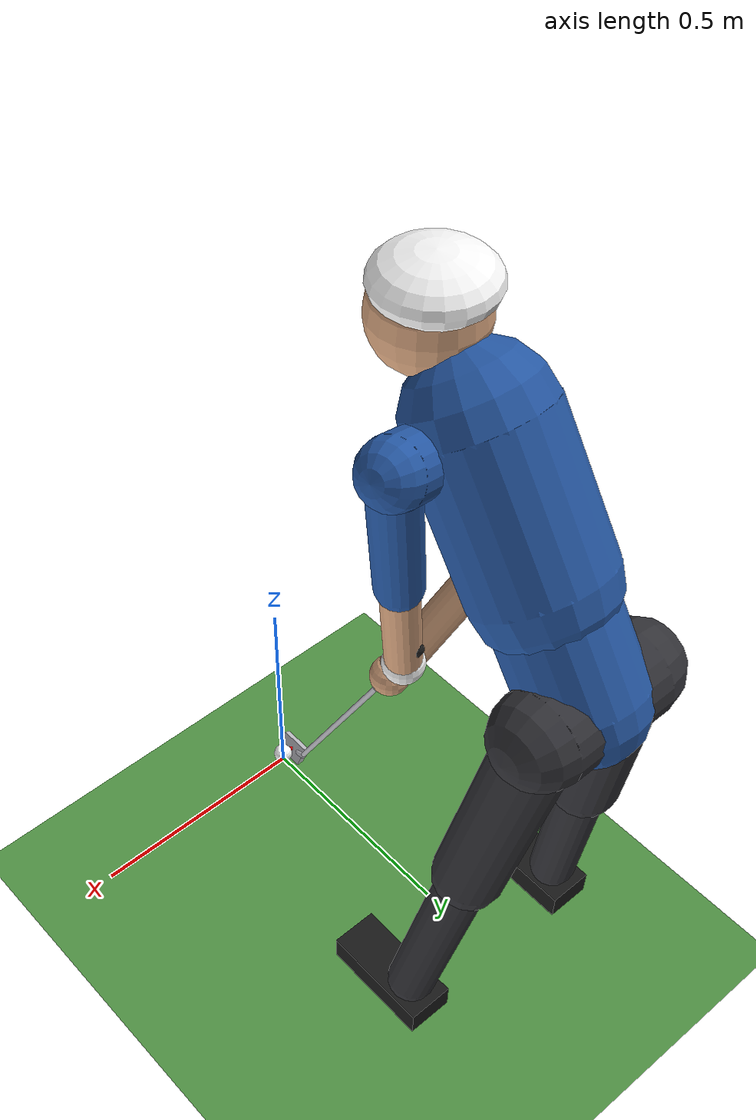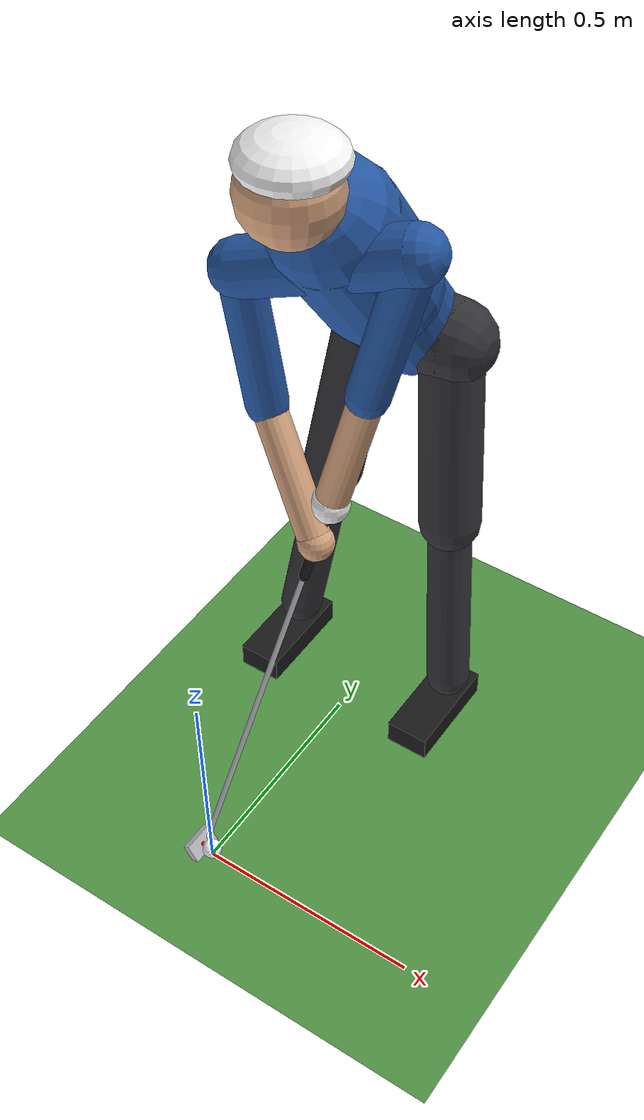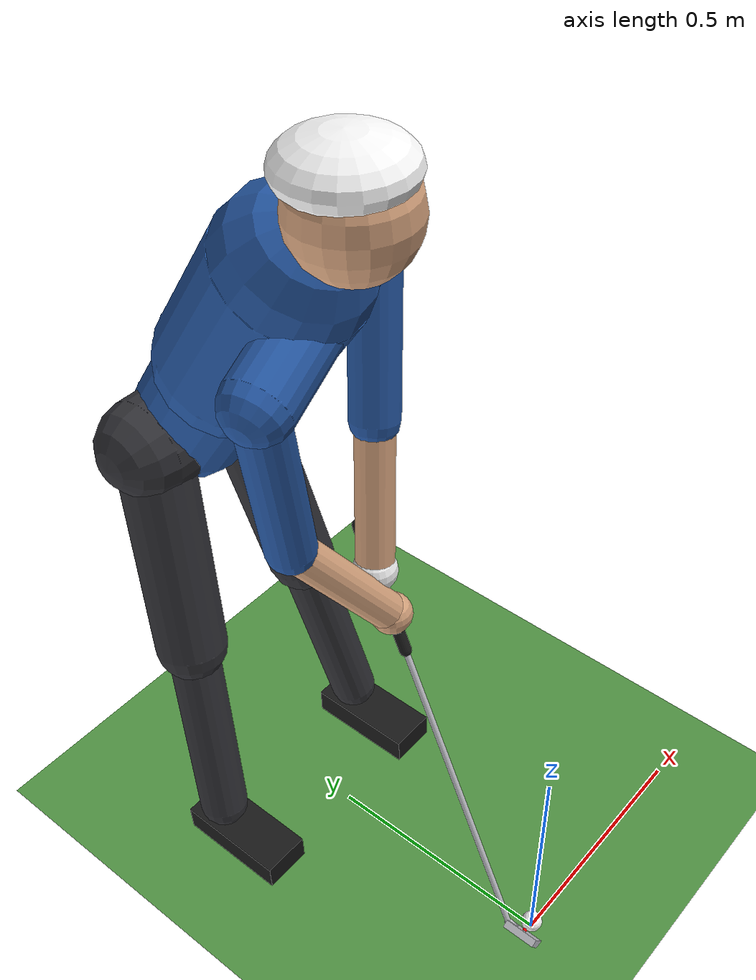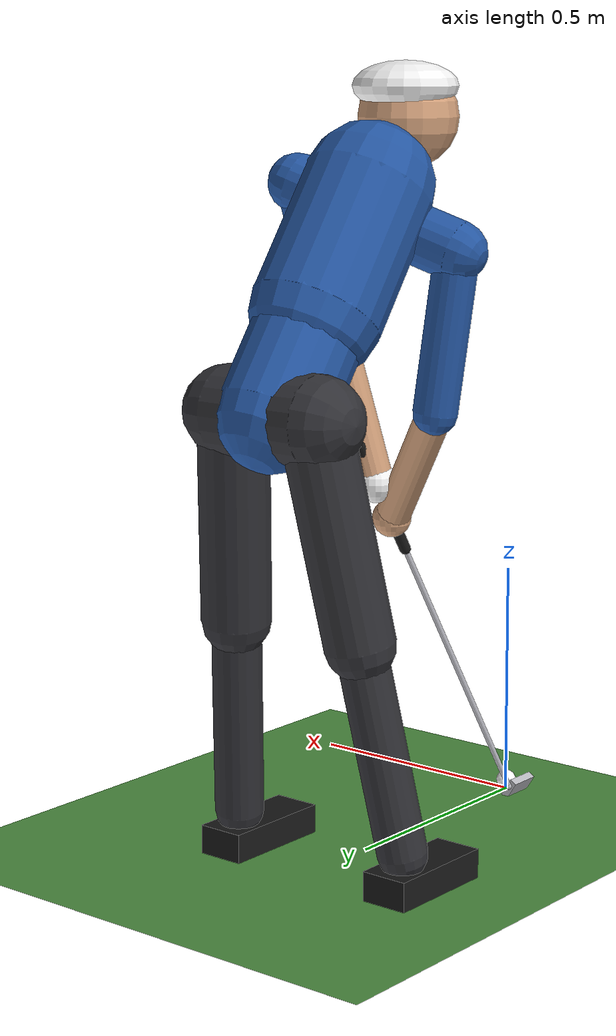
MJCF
<mujoco model="golfer_v13">
  <compiler angle="degree"/>
  <option gravity="0 0 -9.81" timestep="0.00005" density="1.204" viscosity="1.81e-5"/>

  <visual>
    <global azimuth="-60" elevation="-15" offwidth="1280" offheight="960"/>
  </visual>
  <statistic center="0 0.4 0.8" extent="1.8"/>

  <asset>
    <texture type="skybox" builtin="gradient" rgb1=".55 .75 .95" rgb2=".95 .97 1" width="32" height="512"/>
    <texture name="grass" type="2d" builtin="checker" width="512" height="512" rgb1=".30 .55 .25" rgb2=".33 .60 .28"/>
    <material name="grass" texture="grass" texrepeat="8 8" texuniform="true"/>
    <material name="skin"  rgba="0.85 0.65 0.50 1"/>
    <material name="shirt" rgba="0.15 0.35 0.65 1"/>
    <material name="pants" rgba="0.20 0.20 0.22 1"/>
    <material name="glove" rgba="0.97 0.97 0.97 1"/>
    <material name="steel" rgba="0.75 0.75 0.78 1" specular="0.8" shininess="0.8"/>
    <material name="grip"  rgba="0.10 0.10 0.10 1"/>
  </asset>

  <default>
    <geom type="capsule" contype="0" conaffinity="0" condim="3" fluidshape="ellipsoid"/>
    <joint type="hinge" limited="true" armature="0.01"/>
    <default class="contact">
      <geom solimp="0.95 0.99 0.001"/>
    </default>
  </default>

  <worldbody>
    <light pos="0 -1 4" dir="0 0.2 -1" diffuse=".8 .8 .8"/>
    <light pos="-3 3 3" dir="1 -1 -1" diffuse=".3 .3 .3"/>
    <!-- chão: colide com a bola (bits 1) mas não com a cabeça do taco -->
    <geom name="floor" type="plane" size="30 30 0.1" material="grass"
          contype="1" conaffinity="1" friction="0.8 0.005 0.002"/>

    <camera name="face_on"       pos="0.2 -3.6 0.95" xyaxes="1 0 0 0 0.06 1"/>
    <camera name="down_the_line" pos="-3.2 0.45 1.2" xyaxes="0 -1 0 0.12 0 1"/>

    <!-- ===== Pernas + pélvis: fixas ao mundo (sem junta), joelhos fletidos ===== -->
    <body name="lower_body">
      <geom name="pelvis"  fromto="0.090 0.800 0.943 -0.130 0.800 0.943" size="0.09" material="pants" mass="12"/>
      <geom name="thigh_l" fromto="0.080 0.800 0.943 0.141 0.729 0.512" size="0.07"  material="pants" mass="9"/>
      <geom name="shin_l"  fromto="0.141 0.729 0.512 0.200 0.660 0.090" size="0.05"  material="pants" mass="4"/>
      <geom name="foot_l"  type="box" pos="0.200 0.600 0.030" size="0.05 0.12 0.03" material="grip" mass="1"/>
      <geom name="thigh_r" fromto="-0.120 0.800 0.943 -0.171 0.729 0.511" size="0.07"  material="pants" mass="9"/>
      <geom name="shin_r"  fromto="-0.171 0.729 0.511 -0.220 0.660 0.090" size="0.05"  material="pants" mass="4"/>
      <geom name="foot_r"  type="box" pos="-0.220 0.600 0.030" size="0.05 0.12 0.03" material="grip" mass="1"/>
    </body>

    <!-- ===== Tronco: dof 1 ===== -->
    <body name="torso" pos="-0.020 0.800 0.943">
      <!-- Sem junta: no modelo de pêndulo duplo o tronco fica RÍGIDO. Os 2 dof
           são o braço (no peito) e o pulso — ver cabeçalho do ficheiro. -->
      <geom name="waist"  fromto="0 0 0 0.000 -0.126 0.180"  size="0.11" material="shirt" mass="12"/>
      <geom name="chest"  fromto="0.000 -0.126 0.180 0.000 -0.287 0.410" size="0.13" material="shirt" mass="14"/>
      <geom name="neck"   fromto="0.000 -0.287 0.410 0.000 -0.410 0.540" size="0.045" material="skin" mass="1"/>
      <!-- cabeça inclinada para baixo, a "olhar" para a bola -->
      <geom name="head"   type="sphere" pos="0.000 -0.410 0.540" size="0.10" material="skin" mass="5"/>
      <geom name="cap"    type="ellipsoid" pos="0.000 -0.400 0.600" size="0.105 0.105 0.05" material="glove" mass="0.01"/>

      <!-- ===== BRAÇOS: dof 1 — rodam em bloco em torno do centro do peito ===== -->
      <body name="arms" pos="0.010 -0.322 0.350">
        <!-- eixo = normal ao plano de swing, a passar no CENTRO DO PEITO (entre os
             ombros), como o triângulo dos braços num swing real -->
        <joint name="shoulder" axis="0.000 -0.938 0.347" range="-130 95" damping="0.5"/>

        <!-- Os "ombros" pertencem a ESTE corpo (e não ao tronco) para que
             acompanhem os braços. Se ficassem no tronco, os braços descolavam
             visivelmente dos ombros a meio do swing. -->
        <geom name="shoulders" fromto="0.170 0.035 0.060  -0.170 -0.035 -0.060" size="0.06" material="shirt" mass="2"/>

        <!-- braço esquerdo (da frente) ESTICADO -->
        <geom name="upperarm_l" fromto="0.17 0.035 0.06  0.102 -0.012 -0.259"        size="0.045" material="shirt" mass="2.2"/>
        <geom name="forearm_l"  fromto="0.102 -0.012 -0.259  0.042 -0.054 -0.54" size="0.036" material="skin"  mass="1.3"/>
        <geom name="hand_l" type="sphere" pos="0.042 -0.054 -0.54" size="0.042" material="glove" mass="0.5"/>

        <!-- braço direito (de trás) DOBRADO, cotovelo encostado ao corpo -->
        <geom name="upperarm_r" fromto="-0.17 -0.035 -0.06  -0.127 -0.025 -0.377" size="0.045" material="shirt" mass="2.2"/>
        <geom name="forearm_r"  fromto="-0.127 -0.025 -0.377  0.035 -0.096 -0.619" size="0.036" material="skin"  mass="1.3"/>
        <geom name="hand_r" type="sphere" pos="0.035 -0.096 -0.619" size="0.040" material="skin" mass="0.5"/>

        <body name="club" pos="0.039 -0.075 -0.58">
          <joint name="wrist" axis="0.000 -0.938 0.347" range="-110 30" damping="0.05"/>
          <!-- ===== Taco (ferro 7) ===== -->
          <geom name="grip"  fromto="0.01 0.063 0.119  -0.01 -0.058 -0.11" size="0.012" material="grip"  mass="0.05"/>
          <geom name="shaft" fromto="-0.01 -0.058 -0.11  -0.061 -0.367 -0.691"   size="0.006" material="steel" mass="0.11"/>
          <geom name="hosel" fromto="-0.061 -0.367 -0.691  -0.061 -0.383 -0.695"   size="0.008" material="steel" mass="0.01"/>
          <!-- cabeça: caixa rodada -32° em Y → a face (+x local) fica com loft de 32°.
               Única parte do golfista que colide (bits 2: toca na bola, não no chão). -->
          <geom name="clubhead" class="contact" type="box" pos="-0.061 -0.403 -0.699" euler="0 -32 0"
                size="0.008 0.036 0.022" material="steel" mass="0.26" contype="2" conaffinity="2"/>
          <site name="clubface" pos="-0.054 -0.403 -0.695" size="0.005" rgba="1 0 0 1"/>
        </body>
      </body>
    </body>

    <!-- ===== Bola de golfe: 45.9 g, Ø 42.7 mm, à frente da face ===== -->
    <body name="ball" pos="0 0 0.0213">
      <freejoint name="ball_free"/>
      <geom name="ball_geom" class="contact" type="sphere" size="0.0213" mass="0.0459"
            rgba="1 1 1 1" contype="1" conaffinity="3" friction="0.4 0.005 0.002"
            fluidshape="ellipsoid" fluidcoef="0.14 0.25 0.1 1.0 1.0"/>
    </body>
  </worldbody>

  <contact>
    <pair geom1="clubhead" geom2="ball_geom" condim="3"
          solref="0.0004 0.15" solimp="0.95 0.99 0.001" friction="0.4 0.4 0.005 0.0001 0.0001"/>
  </contact>

  <actuator>
    <!-- Motores de binário. ctrlrange ~ binários de pico humanos:
         rotação axial do tronco ~150 N·m, ombro ~100 N·m -->
    <motor name="shoulder_motor" joint="shoulder" gear="1" ctrlrange="-150 150" ctrllimited="true"/>
    <motor name="wrist_motor"    joint="wrist"    gear="1" ctrlrange="-40 40"   ctrllimited="true"/>
  </actuator>

  <sensor>
    <!-- o que interessa medir no impacto -->
    <framelinvel name="clubhead_vel" objtype="site" objname="clubface"/>
    <framepos    name="ball_pos"     objtype="body" objname="ball"/>
    <framelinvel name="ball_vel"     objtype="body" objname="ball"/>
    <!-- estado das duas juntas atuadas -->
    <jointpos    name="q_braco"      joint="shoulder"/>
    <jointpos    name="q_pulso"      joint="wrist"/>
    <jointvel    name="w_braco"      joint="shoulder"/>
    <jointvel    name="w_pulso"      joint="wrist"/>
    <!-- binário realmente aplicado por cada motor (mostra a saturação) -->
    <actuatorfrc name="tau_braco"    actuator="shoulder_motor"/>
    <actuatorfrc name="tau_pulso"    actuator="wrist_motor"/>
  </sensor>
</mujoco>
